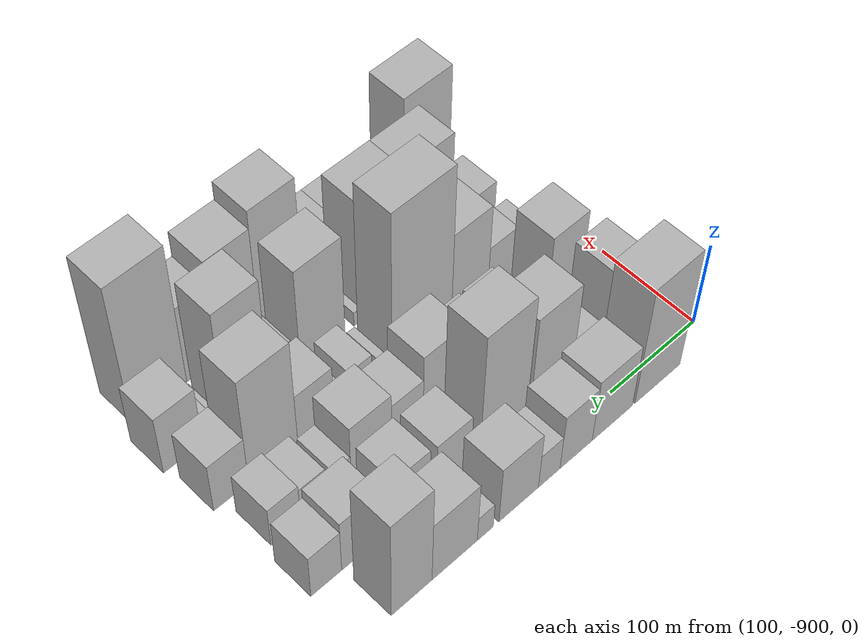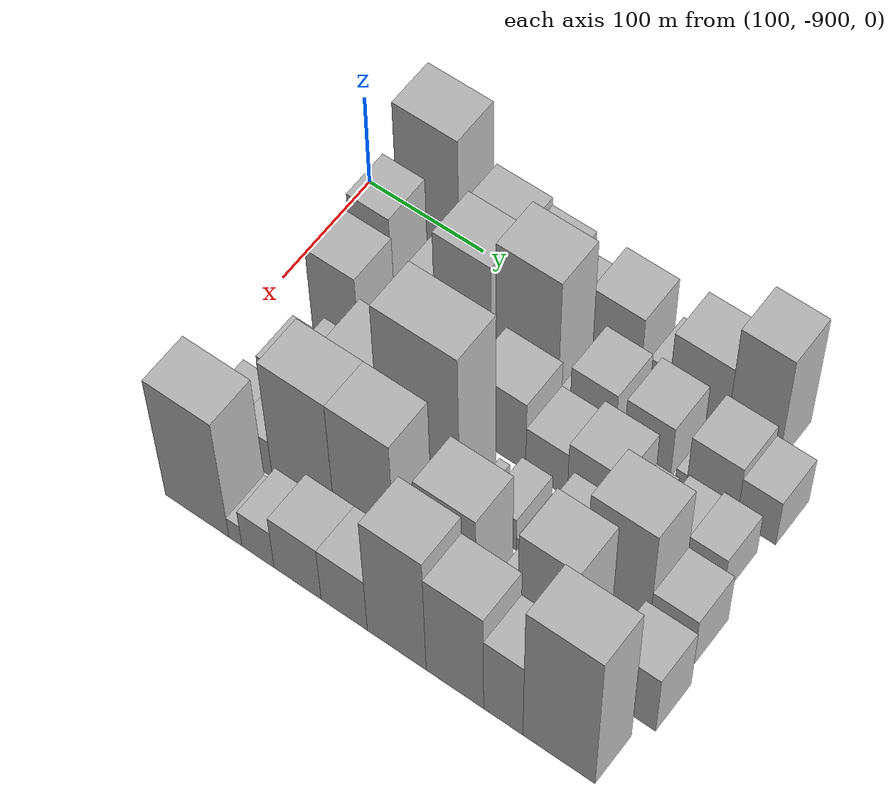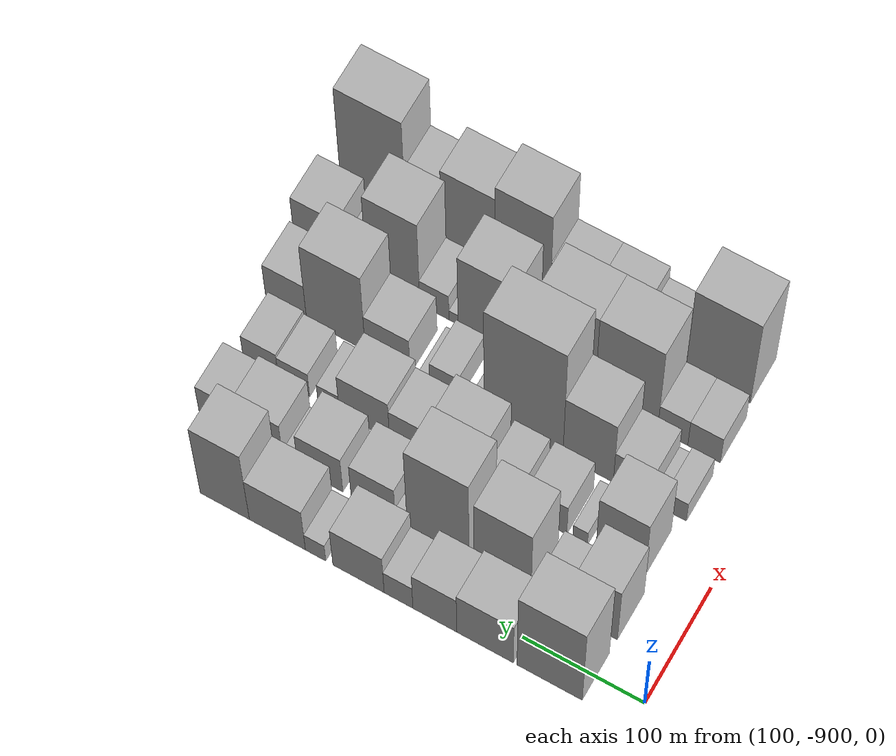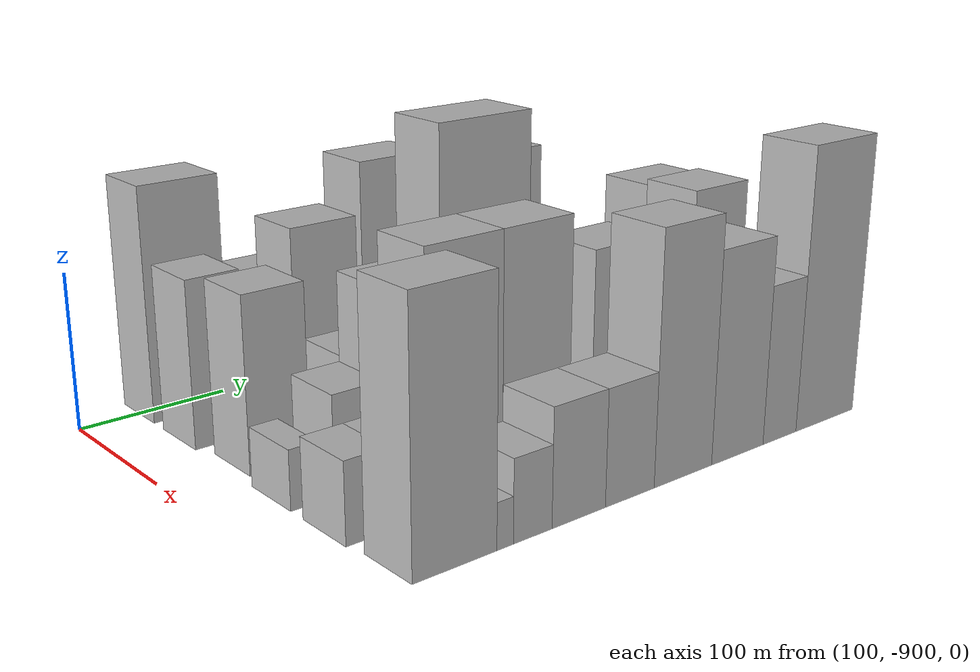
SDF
<sdf version="1.6">
 <world name="default">
  <model name="building_1">
   <static>1</static>
   <pose>100.0000 -833.1717 0 0.000000 0.000000 0.000000</pose>
   <link name="link">
    <pose>0 0 75.00 0 0 0</pose>
    <collision name="collision"><geometry><box><size>40.0000 53.6566 150.0000</size></box></geometry></collision>
    <visual name="visual">
     <cast_shadows>0</cast_shadows>
     <geometry><box><size>40.0000 53.6566 150.0000</size></box></geometry>
     <material>
      <script>
       <uri>model://HANNAS_wall/materials/scripts</uri>
       <uri>model://HANNAS_wall/materials/textures</uri>
       <name>vrc/HANNAS_wall</name>
      </script>
     </material>
    </visual>
   </link>
  </model>
  <model name="building_2">
   <static>1</static>
   <pose>100.0000 -780.0064 0 0.000000 0.000000 0.000000</pose>
   <link name="link">
    <pose>0 0 40.50 0 0 0</pose>
    <collision name="collision"><geometry><box><size>40.0000 46.6742 81.0000</size></box></geometry></collision>
    <visual name="visual">
     <cast_shadows>0</cast_shadows>
     <geometry><box><size>40.0000 46.6742 81.0000</size></box></geometry>
     <material>
      <script>
       <uri>model://HANNAS_wall/materials/scripts</uri>
       <uri>model://HANNAS_wall/materials/textures</uri>
       <name>vrc/HANNAS_wall</name>
      </script>
     </material>
    </visual>
   </link>
  </model>
  <model name="building_3">
   <static>1</static>
   <pose>100.0000 -738.3833 0 0.000000 0.000000 0.000000</pose>
   <link name="link">
    <pose>0 0 36.00 0 0 0</pose>
    <collision name="collision"><geometry><box><size>40.0000 36.5720 72.0000</size></box></geometry></collision>
    <visual name="visual">
     <cast_shadows>0</cast_shadows>
     <geometry><box><size>40.0000 36.5720 72.0000</size></box></geometry>
     <material>
      <script>
       <uri>model://HANNAS_wall/materials/scripts</uri>
       <uri>model://HANNAS_wall/materials/textures</uri>
       <name>vrc/HANNAS_wall</name>
      </script>
     </material>
    </visual>
   </link>
  </model>
  <model name="building_4">
   <static>1</static>
   <pose>100.0000 -708.1061 0 0.000000 0.000000 0.000000</pose>
   <link name="link">
    <pose>0 0 22.50 0 0 0</pose>
    <collision name="collision"><geometry><box><size>40.0000 23.9823 45.0000</size></box></geometry></collision>
    <visual name="visual">
     <cast_shadows>0</cast_shadows>
     <geometry><box><size>40.0000 23.9823 45.0000</size></box></geometry>
     <material>
      <script>
       <uri>model://HANNAS_wall/materials/scripts</uri>
       <uri>model://HANNAS_wall/materials/textures</uri>
       <name>vrc/HANNAS_wall</name>
      </script>
     </material>
    </visual>
   </link>
  </model>
  <model name="building_5">
   <static>1</static>
   <pose>100.0000 -674.6245 0 0.000000 0.000000 0.000000</pose>
   <link name="link">
    <pose>0 0 37.50 0 0 0</pose>
    <collision name="collision"><geometry><box><size>40.0000 42.9808 75.0000</size></box></geometry></collision>
    <visual name="visual">
     <cast_shadows>0</cast_shadows>
     <geometry><box><size>40.0000 42.9808 75.0000</size></box></geometry>
     <material>
      <script>
       <uri>model://HANNAS_wall/materials/scripts</uri>
       <uri>model://HANNAS_wall/materials/textures</uri>
       <name>vrc/HANNAS_wall</name>
      </script>
     </material>
    </visual>
   </link>
  </model>
  <model name="building_6">
   <static>1</static>
   <pose>100.0000 -638.5779 0 0.000000 0.000000 0.000000</pose>
   <link name="link">
    <pose>0 0 16.50 0 0 0</pose>
    <collision name="collision"><geometry><box><size>40.0000 17.1126 33.0000</size></box></geometry></collision>
    <visual name="visual">
     <cast_shadows>0</cast_shadows>
     <geometry><box><size>40.0000 17.1126 33.0000</size></box></geometry>
     <material>
      <script>
       <uri>model://HANNAS_wall/materials/scripts</uri>
       <uri>model://HANNAS_wall/materials/textures</uri>
       <name>vrc/HANNAS_wall</name>
      </script>
     </material>
    </visual>
   </link>
  </model>
  <model name="building_7">
   <static>1</static>
   <pose>100.0000 -606.3343 0 0.000000 0.000000 0.000000</pose>
   <link name="link">
    <pose>0 0 40.50 0 0 0</pose>
    <collision name="collision"><geometry><box><size>40.0000 47.3745 81.0000</size></box></geometry></collision>
    <visual name="visual">
     <cast_shadows>0</cast_shadows>
     <geometry><box><size>40.0000 47.3745 81.0000</size></box></geometry>
     <material>
      <script>
       <uri>model://HANNAS_wall/materials/scripts</uri>
       <uri>model://HANNAS_wall/materials/textures</uri>
       <name>vrc/HANNAS_wall</name>
      </script>
     </material>
    </visual>
   </link>
  </model>
  <model name="building_8">
   <static>1</static>
   <pose>100.0000 -561.8409 0 0.000000 0.000000 0.000000</pose>
   <link name="link">
    <pose>0 0 66.00 0 0 0</pose>
    <collision name="collision"><geometry><box><size>40.0000 41.6123 132.0000</size></box></geometry></collision>
    <visual name="visual">
     <cast_shadows>0</cast_shadows>
     <geometry><box><size>40.0000 41.6123 132.0000</size></box></geometry>
     <material>
      <script>
       <uri>model://HANNAS_wall/materials/scripts</uri>
       <uri>model://HANNAS_wall/materials/textures</uri>
       <name>vrc/HANNAS_wall</name>
      </script>
     </material>
    </visual>
   </link>
  </model>
  <model name="building_47">
   <static>1</static>
   <pose>152.0000 -842.4721 0 0.000000 0.000000 0.000000</pose>
   <link name="link">
    <pose>0 0 52.50 0 0 0</pose>
    <collision name="collision"><geometry><box><size>40.0000 35.0558 105.0000</size></box></geometry></collision>
    <visual name="visual">
     <cast_shadows>0</cast_shadows>
     <geometry><box><size>40.0000 35.0558 105.0000</size></box></geometry>
     <material>
      <script>
       <uri>model://HANNAS_wall/materials/scripts</uri>
       <uri>model://HANNAS_wall/materials/textures</uri>
       <name>vrc/HANNAS_wall</name>
      </script>
     </material>
    </visual>
   </link>
  </model>
  <model name="building_48">
   <static>1</static>
   <pose>152.0000 -806.3187 0 0.000000 0.000000 0.000000</pose>
   <link name="link">
    <pose>0 0 22.50 0 0 0</pose>
    <collision name="collision"><geometry><box><size>40.0000 25.2510 45.0000</size></box></geometry></collision>
    <visual name="visual">
     <cast_shadows>0</cast_shadows>
     <geometry><box><size>40.0000 25.2510 45.0000</size></box></geometry>
     <material>
      <script>
       <uri>model://HANNAS_wall/materials/scripts</uri>
       <uri>model://HANNAS_wall/materials/textures</uri>
       <name>vrc/HANNAS_wall</name>
      </script>
     </material>
    </visual>
   </link>
  </model>
  <model name="building_49">
   <static>1</static>
   <pose>152.0000 -764.9670 0 0.000000 0.000000 0.000000</pose>
   <link name="link">
    <pose>0 0 61.50 0 0 0</pose>
    <collision name="collision"><geometry><box><size>40.0000 47.4525 123.0000</size></box></geometry></collision>
    <visual name="visual">
     <cast_shadows>0</cast_shadows>
     <geometry><box><size>40.0000 47.4525 123.0000</size></box></geometry>
     <material>
      <script>
       <uri>model://HANNAS_wall/materials/scripts</uri>
       <uri>model://HANNAS_wall/materials/textures</uri>
       <name>vrc/HANNAS_wall</name>
      </script>
     </material>
    </visual>
   </link>
  </model>
  <model name="building_50">
   <static>1</static>
   <pose>152.0000 -711.3068 0 0.000000 0.000000 0.000000</pose>
   <link name="link">
    <pose>0 0 78.00 0 0 0</pose>
    <collision name="collision"><geometry><box><size>40.0000 51.8678 156.0000</size></box></geometry></collision>
    <visual name="visual">
     <cast_shadows>0</cast_shadows>
     <geometry><box><size>40.0000 51.8678 156.0000</size></box></geometry>
     <material>
      <script>
       <uri>model://HANNAS_wall/materials/scripts</uri>
       <uri>model://HANNAS_wall/materials/textures</uri>
       <name>vrc/HANNAS_wall</name>
      </script>
     </material>
    </visual>
   </link>
  </model>
  <model name="building_51">
   <static>1</static>
   <pose>152.0000 -680.3910 0 0.000000 0.000000 0.000000</pose>
   <link name="link">
    <pose>0 0 12.00 0 0 0</pose>
    <collision name="collision"><geometry><box><size>40.0000 9.9638 24.0000</size></box></geometry></collision>
    <visual name="visual">
     <cast_shadows>0</cast_shadows>
     <geometry><box><size>40.0000 9.9638 24.0000</size></box></geometry>
     <material>
      <script>
       <uri>model://HANNAS_wall/materials/scripts</uri>
       <uri>model://HANNAS_wall/materials/textures</uri>
       <name>vrc/HANNAS_wall</name>
      </script>
     </material>
    </visual>
   </link>
  </model>
  <model name="building_52">
   <static>1</static>
   <pose>152.0000 -656.7505 0 0.000000 0.000000 0.000000</pose>
   <link name="link">
    <pose>0 0 31.50 0 0 0</pose>
    <collision name="collision"><geometry><box><size>40.0000 37.3173 63.0000</size></box></geometry></collision>
    <visual name="visual">
     <cast_shadows>0</cast_shadows>
     <geometry><box><size>40.0000 37.3173 63.0000</size></box></geometry>
     <material>
      <script>
       <uri>model://HANNAS_wall/materials/scripts</uri>
       <uri>model://HANNAS_wall/materials/textures</uri>
       <name>vrc/HANNAS_wall</name>
      </script>
     </material>
    </visual>
   </link>
  </model>
  <model name="building_53">
   <static>1</static>
   <pose>152.0000 -612.0903 0 0.000000 0.000000 0.000000</pose>
   <link name="link">
    <pose>0 0 33.00 0 0 0</pose>
    <collision name="collision"><geometry><box><size>40.0000 38.0031 66.0000</size></box></geometry></collision>
    <visual name="visual">
     <cast_shadows>0</cast_shadows>
     <geometry><box><size>40.0000 38.0031 66.0000</size></box></geometry>
     <material>
      <script>
       <uri>model://HANNAS_wall/materials/scripts</uri>
       <uri>model://HANNAS_wall/materials/textures</uri>
       <name>vrc/HANNAS_wall</name>
      </script>
     </material>
    </visual>
   </link>
  </model>
  <model name="building_54">
   <static>1</static>
   <pose>152.0000 -584.7030 0 0.000000 0.000000 0.000000</pose>
   <link name="link">
    <pose>0 0 9.00 0 0 0</pose>
    <collision name="collision"><geometry><box><size>40.0000 8.7716 18.0000</size></box></geometry></collision>
    <visual name="visual">
     <cast_shadows>0</cast_shadows>
     <geometry><box><size>40.0000 8.7716 18.0000</size></box></geometry>
     <material>
      <script>
       <uri>model://HANNAS_wall/materials/scripts</uri>
       <uri>model://HANNAS_wall/materials/textures</uri>
       <name>vrc/HANNAS_wall</name>
      </script>
     </material>
    </visual>
   </link>
  </model>
  <model name="building_55">
   <static>1</static>
   <pose>152.0000 -560.1190 0 0.000000 0.000000 0.000000</pose>
   <link name="link">
    <pose>0 0 34.50 0 0 0</pose>
    <collision name="collision"><geometry><box><size>40.0000 40.3963 69.0000</size></box></geometry></collision>
    <visual name="visual">
     <cast_shadows>0</cast_shadows>
     <geometry><box><size>40.0000 40.3963 69.0000</size></box></geometry>
     <material>
      <script>
       <uri>model://HANNAS_wall/materials/scripts</uri>
       <uri>model://HANNAS_wall/materials/textures</uri>
       <name>vrc/HANNAS_wall</name>
      </script>
     </material>
    </visual>
   </link>
  </model>
  <model name="building_56">
   <static>1</static>
   <pose>152.0000 -524.5023 0 0.000000 0.000000 0.000000</pose>
   <link name="link">
    <pose>0 0 28.50 0 0 0</pose>
    <collision name="collision"><geometry><box><size>40.0000 30.8373 57.0000</size></box></geometry></collision>
    <visual name="visual">
     <cast_shadows>0</cast_shadows>
     <geometry><box><size>40.0000 30.8373 57.0000</size></box></geometry>
     <material>
      <script>
       <uri>model://HANNAS_wall/materials/scripts</uri>
       <uri>model://HANNAS_wall/materials/textures</uri>
       <name>vrc/HANNAS_wall</name>
      </script>
     </material>
    </visual>
   </link>
  </model>
  <model name="building_94">
   <static>1</static>
   <pose>204.0000 -833.7187 0 0.000000 0.000000 0.000000</pose>
   <link name="link">
    <pose>0 0 54.00 0 0 0</pose>
    <collision name="collision"><geometry><box><size>40.0000 40.5625 108.0000</size></box></geometry></collision>
    <visual name="visual">
     <cast_shadows>0</cast_shadows>
     <geometry><box><size>40.0000 40.5625 108.0000</size></box></geometry>
     <material>
      <script>
       <uri>model://HANNAS_wall/materials/scripts</uri>
       <uri>model://HANNAS_wall/materials/textures</uri>
       <name>vrc/HANNAS_wall</name>
      </script>
     </material>
    </visual>
   </link>
  </model>
  <model name="building_95">
   <static>1</static>
   <pose>204.0000 -800.3558 0 0.000000 0.000000 0.000000</pose>
   <link name="link">
    <pose>0 0 13.50 0 0 0</pose>
    <collision name="collision"><geometry><box><size>40.0000 12.1633 27.0000</size></box></geometry></collision>
    <visual name="visual">
     <cast_shadows>0</cast_shadows>
     <geometry><box><size>40.0000 12.1633 27.0000</size></box></geometry>
     <material>
      <script>
       <uri>model://HANNAS_wall/materials/scripts</uri>
       <uri>model://HANNAS_wall/materials/textures</uri>
       <name>vrc/HANNAS_wall</name>
      </script>
     </material>
    </visual>
   </link>
  </model>
  <model name="building_96">
   <static>1</static>
   <pose>204.0000 -772.7714 0 0.000000 0.000000 0.000000</pose>
   <link name="link">
    <pose>0 0 28.50 0 0 0</pose>
    <collision name="collision"><geometry><box><size>40.0000 33.0056 57.0000</size></box></geometry></collision>
    <visual name="visual">
     <cast_shadows>0</cast_shadows>
     <geometry><box><size>40.0000 33.0056 57.0000</size></box></geometry>
     <material>
      <script>
       <uri>model://HANNAS_wall/materials/scripts</uri>
       <uri>model://HANNAS_wall/materials/textures</uri>
       <name>vrc/HANNAS_wall</name>
      </script>
     </material>
    </visual>
   </link>
  </model>
  <model name="building_97">
   <static>1</static>
   <pose>204.0000 -737.5766 0 0.000000 0.000000 0.000000</pose>
   <link name="link">
    <pose>0 0 28.50 0 0 0</pose>
    <collision name="collision"><geometry><box><size>40.0000 29.3840 57.0000</size></box></geometry></collision>
    <visual name="visual">
     <cast_shadows>0</cast_shadows>
     <geometry><box><size>40.0000 29.3840 57.0000</size></box></geometry>
     <material>
      <script>
       <uri>model://HANNAS_wall/materials/scripts</uri>
       <uri>model://HANNAS_wall/materials/textures</uri>
       <name>vrc/HANNAS_wall</name>
      </script>
     </material>
    </visual>
   </link>
  </model>
  <model name="building_98">
   <static>1</static>
   <pose>204.0000 -697.2007 0 0.000000 0.000000 0.000000</pose>
   <link name="link">
    <pose>0 0 43.50 0 0 0</pose>
    <collision name="collision"><geometry><box><size>40.0000 45.3679 87.0000</size></box></geometry></collision>
    <visual name="visual">
     <cast_shadows>0</cast_shadows>
     <geometry><box><size>40.0000 45.3679 87.0000</size></box></geometry>
     <material>
      <script>
       <uri>model://HANNAS_wall/materials/scripts</uri>
       <uri>model://HANNAS_wall/materials/textures</uri>
       <name>vrc/HANNAS_wall</name>
      </script>
     </material>
    </visual>
   </link>
  </model>
  <model name="building_99">
   <static>1</static>
   <pose>204.0000 -657.4961 0 0.000000 0.000000 0.000000</pose>
   <link name="link">
    <pose>0 0 28.50 0 0 0</pose>
    <collision name="collision"><geometry><box><size>40.0000 34.0412 57.0000</size></box></geometry></collision>
    <visual name="visual">
     <cast_shadows>0</cast_shadows>
     <geometry><box><size>40.0000 34.0412 57.0000</size></box></geometry>
     <material>
      <script>
       <uri>model://HANNAS_wall/materials/scripts</uri>
       <uri>model://HANNAS_wall/materials/textures</uri>
       <name>vrc/HANNAS_wall</name>
      </script>
     </material>
    </visual>
   </link>
  </model>
  <model name="building_100">
   <static>1</static>
   <pose>204.0000 -619.0660 0 0.000000 0.000000 0.000000</pose>
   <link name="link">
    <pose>0 0 36.00 0 0 0</pose>
    <collision name="collision"><geometry><box><size>40.0000 42.8190 72.0000</size></box></geometry></collision>
    <visual name="visual">
     <cast_shadows>0</cast_shadows>
     <geometry><box><size>40.0000 42.8190 72.0000</size></box></geometry>
     <material>
      <script>
       <uri>model://HANNAS_wall/materials/scripts</uri>
       <uri>model://HANNAS_wall/materials/textures</uri>
       <name>vrc/HANNAS_wall</name>
      </script>
     </material>
    </visual>
   </link>
  </model>
  <model name="building_101">
   <static>1</static>
   <pose>204.0000 -588.5305 0 0.000000 0.000000 0.000000</pose>
   <link name="link">
    <pose>0 0 16.50 0 0 0</pose>
    <collision name="collision"><geometry><box><size>40.0000 18.2520 33.0000</size></box></geometry></collision>
    <visual name="visual">
     <cast_shadows>0</cast_shadows>
     <geometry><box><size>40.0000 18.2520 33.0000</size></box></geometry>
     <material>
      <script>
       <uri>model://HANNAS_wall/materials/scripts</uri>
       <uri>model://HANNAS_wall/materials/textures</uri>
       <name>vrc/HANNAS_wall</name>
      </script>
     </material>
    </visual>
   </link>
  </model>
  <model name="building_102">
   <static>1</static>
   <pose>204.0000 -559.1392 0 0.000000 0.000000 0.000000</pose>
   <link name="link">
    <pose>0 0 22.50 0 0 0</pose>
    <collision name="collision"><geometry><box><size>40.0000 26.5305 45.0000</size></box></geometry></collision>
    <visual name="visual">
     <cast_shadows>0</cast_shadows>
     <geometry><box><size>40.0000 26.5305 45.0000</size></box></geometry>
     <material>
      <script>
       <uri>model://HANNAS_wall/materials/scripts</uri>
       <uri>model://HANNAS_wall/materials/textures</uri>
       <name>vrc/HANNAS_wall</name>
      </script>
     </material>
    </visual>
   </link>
  </model>
  <model name="building_103">
   <static>1</static>
   <pose>204.0000 -530.9005 0 0.000000 0.000000 0.000000</pose>
   <link name="link">
    <pose>0 0 25.50 0 0 0</pose>
    <collision name="collision"><geometry><box><size>40.0000 29.9469 51.0000</size></box></geometry></collision>
    <visual name="visual">
     <cast_shadows>0</cast_shadows>
     <geometry><box><size>40.0000 29.9469 51.0000</size></box></geometry>
     <material>
      <script>
       <uri>model://HANNAS_wall/materials/scripts</uri>
       <uri>model://HANNAS_wall/materials/textures</uri>
       <name>vrc/HANNAS_wall</name>
      </script>
     </material>
    </visual>
   </link>
  </model>
  <model name="building_146">
   <static>1</static>
   <pose>256.0000 -850.7327 0 0.000000 0.000000 0.000000</pose>
   <link name="link">
    <pose>0 0 18.00 0 0 0</pose>
    <collision name="collision"><geometry><box><size>40.0000 18.5346 36.0000</size></box></geometry></collision>
    <visual name="visual">
     <cast_shadows>0</cast_shadows>
     <geometry><box><size>40.0000 18.5346 36.0000</size></box></geometry>
     <material>
      <script>
       <uri>model://HANNAS_wall/materials/scripts</uri>
       <uri>model://HANNAS_wall/materials/textures</uri>
       <name>vrc/HANNAS_wall</name>
      </script>
     </material>
    </visual>
   </link>
  </model>
  <model name="building_147">
   <static>1</static>
   <pose>256.0000 -836.5018 0 0.000000 0.000000 0.000000</pose>
   <link name="link">
    <pose>0 0 12.00 0 0 0</pose>
    <collision name="collision"><geometry><box><size>40.0000 9.9272 24.0000</size></box></geometry></collision>
    <visual name="visual">
     <cast_shadows>0</cast_shadows>
     <geometry><box><size>40.0000 9.9272 24.0000</size></box></geometry>
     <material>
      <script>
       <uri>model://HANNAS_wall/materials/scripts</uri>
       <uri>model://HANNAS_wall/materials/textures</uri>
       <name>vrc/HANNAS_wall</name>
      </script>
     </material>
    </visual>
   </link>
  </model>
  <model name="building_148">
   <static>1</static>
   <pose>256.0000 -815.3508 0 0.000000 0.000000 0.000000</pose>
   <link name="link">
    <pose>0 0 30.00 0 0 0</pose>
    <collision name="collision"><geometry><box><size>40.0000 32.3750 60.0000</size></box></geometry></collision>
    <visual name="visual">
     <cast_shadows>0</cast_shadows>
     <geometry><box><size>40.0000 32.3750 60.0000</size></box></geometry>
     <material>
      <script>
       <uri>model://HANNAS_wall/materials/scripts</uri>
       <uri>model://HANNAS_wall/materials/textures</uri>
       <name>vrc/HANNAS_wall</name>
      </script>
     </material>
    </visual>
   </link>
  </model>
  <model name="building_149">
   <static>1</static>
   <pose>256.0000 -778.0849 0 0.000000 0.000000 0.000000</pose>
   <link name="link">
    <pose>0 0 57.00 0 0 0</pose>
    <collision name="collision"><geometry><box><size>40.0000 42.1568 114.0000</size></box></geometry></collision>
    <visual name="visual">
     <cast_shadows>0</cast_shadows>
     <geometry><box><size>40.0000 42.1568 114.0000</size></box></geometry>
     <material>
      <script>
       <uri>model://HANNAS_wall/materials/scripts</uri>
       <uri>model://HANNAS_wall/materials/textures</uri>
       <name>vrc/HANNAS_wall</name>
      </script>
     </material>
    </visual>
   </link>
  </model>
  <model name="building_150">
   <static>1</static>
   <pose>256.0000 -723.7025 0 0.000000 0.000000 0.000000</pose>
   <link name="link">
    <pose>0 0 99.00 0 0 0</pose>
    <collision name="collision"><geometry><box><size>40.0000 66.6081 198.0000</size></box></geometry></collision>
    <visual name="visual">
     <cast_shadows>0</cast_shadows>
     <geometry><box><size>40.0000 66.6081 198.0000</size></box></geometry>
     <material>
      <script>
       <uri>model://HANNAS_wall/materials/scripts</uri>
       <uri>model://HANNAS_wall/materials/textures</uri>
       <name>vrc/HANNAS_wall</name>
      </script>
     </material>
    </visual>
   </link>
  </model>
  <model name="building_151">
   <static>1</static>
   <pose>256.0000 -683.1625 0 0.000000 0.000000 0.000000</pose>
   <link name="link">
    <pose>0 0 10.50 0 0 0</pose>
    <collision name="collision"><geometry><box><size>40.0000 8.4719 21.0000</size></box></geometry></collision>
    <visual name="visual">
     <cast_shadows>0</cast_shadows>
     <geometry><box><size>40.0000 8.4719 21.0000</size></box></geometry>
     <material>
      <script>
       <uri>model://HANNAS_wall/materials/scripts</uri>
       <uri>model://HANNAS_wall/materials/textures</uri>
       <name>vrc/HANNAS_wall</name>
      </script>
     </material>
    </visual>
   </link>
  </model>
  <model name="building_152">
   <static>1</static>
   <pose>256.0000 -656.7186 0 0.000000 0.000000 0.000000</pose>
   <link name="link">
    <pose>0 0 21.00 0 0 0</pose>
    <collision name="collision"><geometry><box><size>40.0000 24.4159 42.0000</size></box></geometry></collision>
    <visual name="visual">
     <cast_shadows>0</cast_shadows>
     <geometry><box><size>40.0000 24.4159 42.0000</size></box></geometry>
     <material>
      <script>
       <uri>model://HANNAS_wall/materials/scripts</uri>
       <uri>model://HANNAS_wall/materials/textures</uri>
       <name>vrc/HANNAS_wall</name>
      </script>
     </material>
    </visual>
   </link>
  </model>
  <model name="building_153">
   <static>1</static>
   <pose>256.0000 -640.1654 0 0.000000 0.000000 0.000000</pose>
   <link name="link">
    <pose>0 0 9.00 0 0 0</pose>
    <collision name="collision"><geometry><box><size>40.0000 8.6904 18.0000</size></box></geometry></collision>
    <visual name="visual">
     <cast_shadows>0</cast_shadows>
     <geometry><box><size>40.0000 8.6904 18.0000</size></box></geometry>
     <material>
      <script>
       <uri>model://HANNAS_wall/materials/scripts</uri>
       <uri>model://HANNAS_wall/materials/textures</uri>
       <name>vrc/HANNAS_wall</name>
      </script>
     </material>
    </visual>
   </link>
  </model>
  <model name="building_154">
   <static>1</static>
   <pose>256.0000 -608.6479 0 0.000000 0.000000 0.000000</pose>
   <link name="link">
    <pose>0 0 33.00 0 0 0</pose>
    <collision name="collision"><geometry><box><size>40.0000 38.3446 66.0000</size></box></geometry></collision>
    <visual name="visual">
     <cast_shadows>0</cast_shadows>
     <geometry><box><size>40.0000 38.3446 66.0000</size></box></geometry>
     <material>
      <script>
       <uri>model://HANNAS_wall/materials/scripts</uri>
       <uri>model://HANNAS_wall/materials/textures</uri>
       <name>vrc/HANNAS_wall</name>
      </script>
     </material>
    </visual>
   </link>
  </model>
  <model name="building_155">
   <static>1</static>
   <pose>256.0000 -564.2571 0 0.000000 0.000000 0.000000</pose>
   <link name="link">
    <pose>0 0 69.00 0 0 0</pose>
    <collision name="collision"><geometry><box><size>40.0000 50.4369 138.0000</size></box></geometry></collision>
    <visual name="visual">
     <cast_shadows>0</cast_shadows>
     <geometry><box><size>40.0000 50.4369 138.0000</size></box></geometry>
     <material>
      <script>
       <uri>model://HANNAS_wall/materials/scripts</uri>
       <uri>model://HANNAS_wall/materials/textures</uri>
       <name>vrc/HANNAS_wall</name>
      </script>
     </material>
    </visual>
   </link>
  </model>
  <model name="building_156">
   <static>1</static>
   <pose>256.0000 -521.4748 0 0.000000 0.000000 0.000000</pose>
   <link name="link">
    <pose>0 0 31.50 0 0 0</pose>
    <collision name="collision"><geometry><box><size>40.0000 35.1278 63.0000</size></box></geometry></collision>
    <visual name="visual">
     <cast_shadows>0</cast_shadows>
     <geometry><box><size>40.0000 35.1278 63.0000</size></box></geometry>
     <material>
      <script>
       <uri>model://HANNAS_wall/materials/scripts</uri>
       <uri>model://HANNAS_wall/materials/textures</uri>
       <name>vrc/HANNAS_wall</name>
      </script>
     </material>
    </visual>
   </link>
  </model>
  <model name="building_204">
   <static>1</static>
   <pose>308.0000 -846.4444 0 0.000000 0.000000 0.000000</pose>
   <link name="link">
    <pose>0 0 24.00 0 0 0</pose>
    <collision name="collision"><geometry><box><size>40.0000 27.1113 48.0000</size></box></geometry></collision>
    <visual name="visual">
     <cast_shadows>0</cast_shadows>
     <geometry><box><size>40.0000 27.1113 48.0000</size></box></geometry>
     <material>
      <script>
       <uri>model://HANNAS_wall/materials/scripts</uri>
       <uri>model://HANNAS_wall/materials/textures</uri>
       <name>vrc/HANNAS_wall</name>
      </script>
     </material>
    </visual>
   </link>
  </model>
  <model name="building_205">
   <static>1</static>
   <pose>308.0000 -820.2994 0 0.000000 0.000000 0.000000</pose>
   <link name="link">
    <pose>0 0 24.00 0 0 0</pose>
    <collision name="collision"><geometry><box><size>40.0000 25.1787 48.0000</size></box></geometry></collision>
    <visual name="visual">
     <cast_shadows>0</cast_shadows>
     <geometry><box><size>40.0000 25.1787 48.0000</size></box></geometry>
     <material>
      <script>
       <uri>model://HANNAS_wall/materials/scripts</uri>
       <uri>model://HANNAS_wall/materials/textures</uri>
       <name>vrc/HANNAS_wall</name>
      </script>
     </material>
    </visual>
   </link>
  </model>
  <model name="building_206">
   <static>1</static>
   <pose>308.0000 -781.2986 0 0.000000 0.000000 0.000000</pose>
   <link name="link">
    <pose>0 0 75.00 0 0 0</pose>
    <collision name="collision"><geometry><box><size>40.0000 52.8228 150.0000</size></box></geometry></collision>
    <visual name="visual">
     <cast_shadows>0</cast_shadows>
     <geometry><box><size>40.0000 52.8228 150.0000</size></box></geometry>
     <material>
      <script>
       <uri>model://HANNAS_wall/materials/scripts</uri>
       <uri>model://HANNAS_wall/materials/textures</uri>
       <name>vrc/HANNAS_wall</name>
      </script>
     </material>
    </visual>
   </link>
  </model>
  <model name="building_207">
   <static>1</static>
   <pose>308.0000 -729.8749 0 0.000000 0.000000 0.000000</pose>
   <link name="link">
    <pose>0 0 75.00 0 0 0</pose>
    <collision name="collision"><geometry><box><size>40.0000 50.0245 150.0000</size></box></geometry></collision>
    <visual name="visual">
     <cast_shadows>0</cast_shadows>
     <geometry><box><size>40.0000 50.0245 150.0000</size></box></geometry>
     <material>
      <script>
       <uri>model://HANNAS_wall/materials/scripts</uri>
       <uri>model://HANNAS_wall/materials/textures</uri>
       <name>vrc/HANNAS_wall</name>
      </script>
     </material>
    </visual>
   </link>
  </model>
  <model name="building_208">
   <static>1</static>
   <pose>308.0000 -701.0978 0 0.000000 0.000000 0.000000</pose>
   <link name="link">
    <pose>0 0 9.00 0 0 0</pose>
    <collision name="collision"><geometry><box><size>40.0000 7.5297 18.0000</size></box></geometry></collision>
    <visual name="visual">
     <cast_shadows>0</cast_shadows>
     <geometry><box><size>40.0000 7.5297 18.0000</size></box></geometry>
     <material>
      <script>
       <uri>model://HANNAS_wall/materials/scripts</uri>
       <uri>model://HANNAS_wall/materials/textures</uri>
       <name>vrc/HANNAS_wall</name>
      </script>
     </material>
    </visual>
   </link>
  </model>
  <model name="building_209">
   <static>1</static>
   <pose>308.0000 -663.0990 0 0.000000 0.000000 0.000000</pose>
   <link name="link">
    <pose>0 0 63.00 0 0 0</pose>
    <collision name="collision"><geometry><box><size>40.0000 48.4678 126.0000</size></box></geometry></collision>
    <visual name="visual">
     <cast_shadows>0</cast_shadows>
     <geometry><box><size>40.0000 48.4678 126.0000</size></box></geometry>
     <material>
      <script>
       <uri>model://HANNAS_wall/materials/scripts</uri>
       <uri>model://HANNAS_wall/materials/textures</uri>
       <name>vrc/HANNAS_wall</name>
      </script>
     </material>
    </visual>
   </link>
  </model>
  <model name="building_210">
   <static>1</static>
   <pose>308.0000 -634.9970 0 0.000000 0.000000 0.000000</pose>
   <link name="link">
    <pose>0 0 9.00 0 0 0</pose>
    <collision name="collision"><geometry><box><size>40.0000 7.7363 18.0000</size></box></geometry></collision>
    <visual name="visual">
     <cast_shadows>0</cast_shadows>
     <geometry><box><size>40.0000 7.7363 18.0000</size></box></geometry>
     <material>
      <script>
       <uri>model://HANNAS_wall/materials/scripts</uri>
       <uri>model://HANNAS_wall/materials/textures</uri>
       <name>vrc/HANNAS_wall</name>
      </script>
     </material>
    </visual>
   </link>
  </model>
  <model name="building_211">
   <static>1</static>
   <pose>308.0000 -618.6231 0 0.000000 0.000000 0.000000</pose>
   <link name="link">
    <pose>0 0 22.50 0 0 0</pose>
    <collision name="collision"><geometry><box><size>40.0000 25.0115 45.0000</size></box></geometry></collision>
    <visual name="visual">
     <cast_shadows>0</cast_shadows>
     <geometry><box><size>40.0000 25.0115 45.0000</size></box></geometry>
     <material>
      <script>
       <uri>model://HANNAS_wall/materials/scripts</uri>
       <uri>model://HANNAS_wall/materials/textures</uri>
       <name>vrc/HANNAS_wall</name>
      </script>
     </material>
    </visual>
   </link>
  </model>
  <model name="building_212">
   <static>1</static>
   <pose>308.0000 -583.3788 0 0.000000 0.000000 0.000000</pose>
   <link name="link">
    <pose>0 0 73.50 0 0 0</pose>
    <collision name="collision"><geometry><box><size>40.0000 45.4770 147.0000</size></box></geometry></collision>
    <visual name="visual">
     <cast_shadows>0</cast_shadows>
     <geometry><box><size>40.0000 45.4770 147.0000</size></box></geometry>
     <material>
      <script>
       <uri>model://HANNAS_wall/materials/scripts</uri>
       <uri>model://HANNAS_wall/materials/textures</uri>
       <name>vrc/HANNAS_wall</name>
      </script>
     </material>
    </visual>
   </link>
  </model>
  <model name="building_213">
   <static>1</static>
   <pose>308.0000 -553.6108 0 0.000000 0.000000 0.000000</pose>
   <link name="link">
    <pose>0 0 9.00 0 0 0</pose>
    <collision name="collision"><geometry><box><size>40.0000 8.0591 18.0000</size></box></geometry></collision>
    <visual name="visual">
     <cast_shadows>0</cast_shadows>
     <geometry><box><size>40.0000 8.0591 18.0000</size></box></geometry>
     <material>
      <script>
       <uri>model://HANNAS_wall/materials/scripts</uri>
       <uri>model://HANNAS_wall/materials/textures</uri>
       <name>vrc/HANNAS_wall</name>
      </script>
     </material>
    </visual>
   </link>
  </model>
  <model name="building_214">
   <static>1</static>
   <pose>308.0000 -543.2243 0 0.000000 0.000000 0.000000</pose>
   <link name="link">
    <pose>0 0 13.50 0 0 0</pose>
    <collision name="collision"><geometry><box><size>40.0000 12.7139 27.0000</size></box></geometry></collision>
    <visual name="visual">
     <cast_shadows>0</cast_shadows>
     <geometry><box><size>40.0000 12.7139 27.0000</size></box></geometry>
     <material>
      <script>
       <uri>model://HANNAS_wall/materials/scripts</uri>
       <uri>model://HANNAS_wall/materials/textures</uri>
       <name>vrc/HANNAS_wall</name>
      </script>
     </material>
    </visual>
   </link>
  </model>
  <model name="building_215">
   <static>1</static>
   <pose>308.0000 -517.2345 0 0.000000 0.000000 0.000000</pose>
   <link name="link">
    <pose>0 0 37.50 0 0 0</pose>
    <collision name="collision"><geometry><box><size>40.0000 39.2657 75.0000</size></box></geometry></collision>
    <visual name="visual">
     <cast_shadows>0</cast_shadows>
     <geometry><box><size>40.0000 39.2657 75.0000</size></box></geometry>
     <material>
      <script>
       <uri>model://HANNAS_wall/materials/scripts</uri>
       <uri>model://HANNAS_wall/materials/textures</uri>
       <name>vrc/HANNAS_wall</name>
      </script>
     </material>
    </visual>
   </link>
  </model>
  <model name="building_254">
   <static>1</static>
   <pose>360.0000 -830.0147 0 0.000000 0.000000 0.000000</pose>
   <link name="link">
    <pose>0 0 75.00 0 0 0</pose>
    <collision name="collision"><geometry><box><size>40.0000 53.9707 150.0000</size></box></geometry></collision>
    <visual name="visual">
     <cast_shadows>0</cast_shadows>
     <geometry><box><size>40.0000 53.9707 150.0000</size></box></geometry>
     <material>
      <script>
       <uri>model://HANNAS_wall/materials/scripts</uri>
       <uri>model://HANNAS_wall/materials/textures</uri>
       <name>vrc/HANNAS_wall</name>
      </script>
     </material>
    </visual>
   </link>
  </model>
  <model name="building_255">
   <static>1</static>
   <pose>360.0000 -797.5064 0 0.000000 0.000000 0.000000</pose>
   <link name="link">
    <pose>0 0 13.50 0 0 0</pose>
    <collision name="collision"><geometry><box><size>40.0000 11.0457 27.0000</size></box></geometry></collision>
    <visual name="visual">
     <cast_shadows>0</cast_shadows>
     <geometry><box><size>40.0000 11.0457 27.0000</size></box></geometry>
     <material>
      <script>
       <uri>model://HANNAS_wall/materials/scripts</uri>
       <uri>model://HANNAS_wall/materials/textures</uri>
       <name>vrc/HANNAS_wall</name>
      </script>
     </material>
    </visual>
   </link>
  </model>
  <model name="building_256">
   <static>1</static>
   <pose>360.0000 -778.5814 0 0.000000 0.000000 0.000000</pose>
   <link name="link">
    <pose>0 0 24.00 0 0 0</pose>
    <collision name="collision"><geometry><box><size>40.0000 26.8043 48.0000</size></box></geometry></collision>
    <visual name="visual">
     <cast_shadows>0</cast_shadows>
     <geometry><box><size>40.0000 26.8043 48.0000</size></box></geometry>
     <material>
      <script>
       <uri>model://HANNAS_wall/materials/scripts</uri>
       <uri>model://HANNAS_wall/materials/textures</uri>
       <name>vrc/HANNAS_wall</name>
      </script>
     </material>
    </visual>
   </link>
  </model>
  <model name="building_257">
   <static>1</static>
   <pose>360.0000 -745.6493 0 0.000000 0.000000 0.000000</pose>
   <link name="link">
    <pose>0 0 34.50 0 0 0</pose>
    <collision name="collision"><geometry><box><size>40.0000 39.0599 69.0000</size></box></geometry></collision>
    <visual name="visual">
     <cast_shadows>0</cast_shadows>
     <geometry><box><size>40.0000 39.0599 69.0000</size></box></geometry>
     <material>
      <script>
       <uri>model://HANNAS_wall/materials/scripts</uri>
       <uri>model://HANNAS_wall/materials/textures</uri>
       <name>vrc/HANNAS_wall</name>
      </script>
     </material>
    </visual>
   </link>
  </model>
  <model name="building_258">
   <static>1</static>
   <pose>360.0000 -707.1825 0 0.000000 0.000000 0.000000</pose>
   <link name="link">
    <pose>0 0 34.50 0 0 0</pose>
    <collision name="collision"><geometry><box><size>40.0000 37.8738 69.0000</size></box></geometry></collision>
    <visual name="visual">
     <cast_shadows>0</cast_shadows>
     <geometry><box><size>40.0000 37.8738 69.0000</size></box></geometry>
     <material>
      <script>
       <uri>model://HANNAS_wall/materials/scripts</uri>
       <uri>model://HANNAS_wall/materials/textures</uri>
       <name>vrc/HANNAS_wall</name>
      </script>
     </material>
    </visual>
   </link>
  </model>
  <model name="building_259">
   <static>1</static>
   <pose>360.0000 -664.4480 0 0.000000 0.000000 0.000000</pose>
   <link name="link">
    <pose>0 0 75.00 0 0 0</pose>
    <collision name="collision"><geometry><box><size>40.0000 47.5953 150.0000</size></box></geometry></collision>
    <visual name="visual">
     <cast_shadows>0</cast_shadows>
     <geometry><box><size>40.0000 47.5953 150.0000</size></box></geometry>
     <material>
      <script>
       <uri>model://HANNAS_wall/materials/scripts</uri>
       <uri>model://HANNAS_wall/materials/textures</uri>
       <name>vrc/HANNAS_wall</name>
      </script>
     </material>
    </visual>
   </link>
  </model>
  <model name="building_260">
   <static>1</static>
   <pose>360.0000 -617.8131 0 0.000000 0.000000 0.000000</pose>
   <link name="link">
    <pose>0 0 64.50 0 0 0</pose>
    <collision name="collision"><geometry><box><size>40.0000 45.6745 129.0000</size></box></geometry></collision>
    <visual name="visual">
     <cast_shadows>0</cast_shadows>
     <geometry><box><size>40.0000 45.6745 129.0000</size></box></geometry>
     <material>
      <script>
       <uri>model://HANNAS_wall/materials/scripts</uri>
       <uri>model://HANNAS_wall/materials/textures</uri>
       <name>vrc/HANNAS_wall</name>
      </script>
     </material>
    </visual>
   </link>
  </model>
  <model name="building_261">
   <static>1</static>
   <pose>360.0000 -579.5487 0 0.000000 0.000000 0.000000</pose>
   <link name="link">
    <pose>0 0 49.50 0 0 0</pose>
    <collision name="collision"><geometry><box><size>40.0000 30.8542 99.0000</size></box></geometry></collision>
    <visual name="visual">
     <cast_shadows>0</cast_shadows>
     <geometry><box><size>40.0000 30.8542 99.0000</size></box></geometry>
     <material>
      <script>
       <uri>model://HANNAS_wall/materials/scripts</uri>
       <uri>model://HANNAS_wall/materials/textures</uri>
       <name>vrc/HANNAS_wall</name>
      </script>
     </material>
    </visual>
   </link>
  </model>
  <model name="building_262">
   <static>1</static>
   <pose>360.0000 -536.0816 0 0.000000 0.000000 0.000000</pose>
   <link name="link">
    <pose>0 0 88.50 0 0 0</pose>
    <collision name="collision"><geometry><box><size>40.0000 56.0799 177.0000</size></box></geometry></collision>
    <visual name="visual">
     <cast_shadows>0</cast_shadows>
     <geometry><box><size>40.0000 56.0799 177.0000</size></box></geometry>
     <material>
      <script>
       <uri>model://HANNAS_wall/materials/scripts</uri>
       <uri>model://HANNAS_wall/materials/textures</uri>
       <name>vrc/HANNAS_wall</name>
      </script>
     </material>
    </visual>
   </link>
  </model>
 </world>
</sdf>
